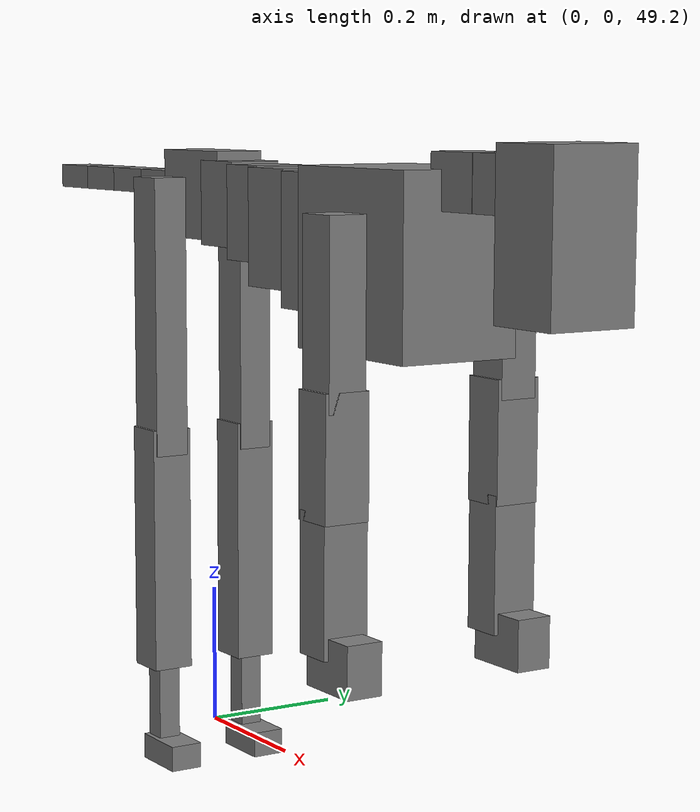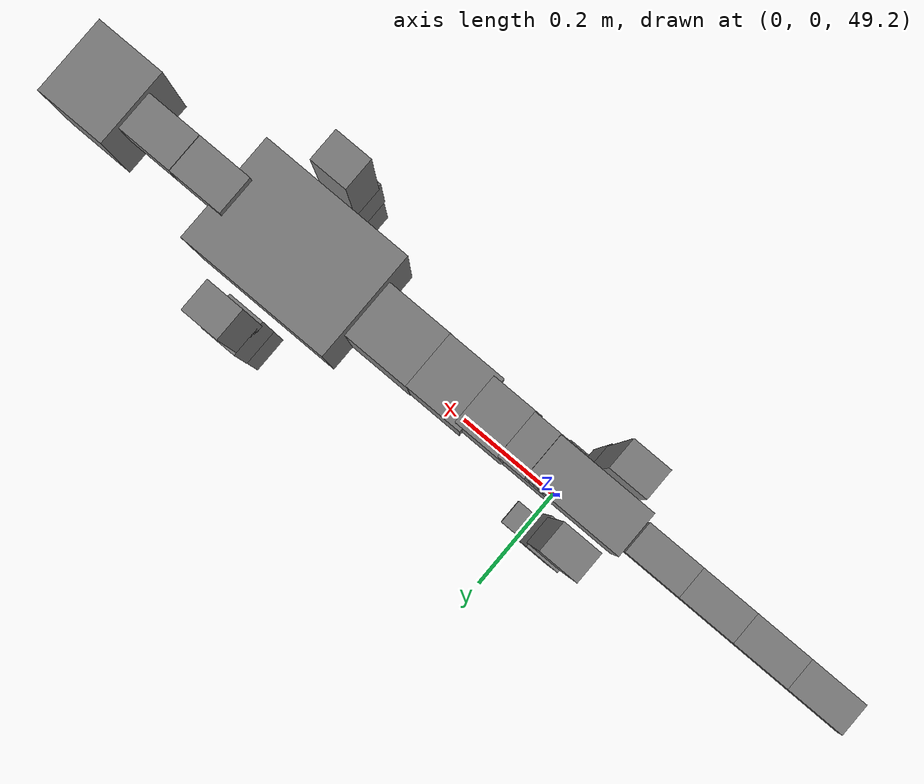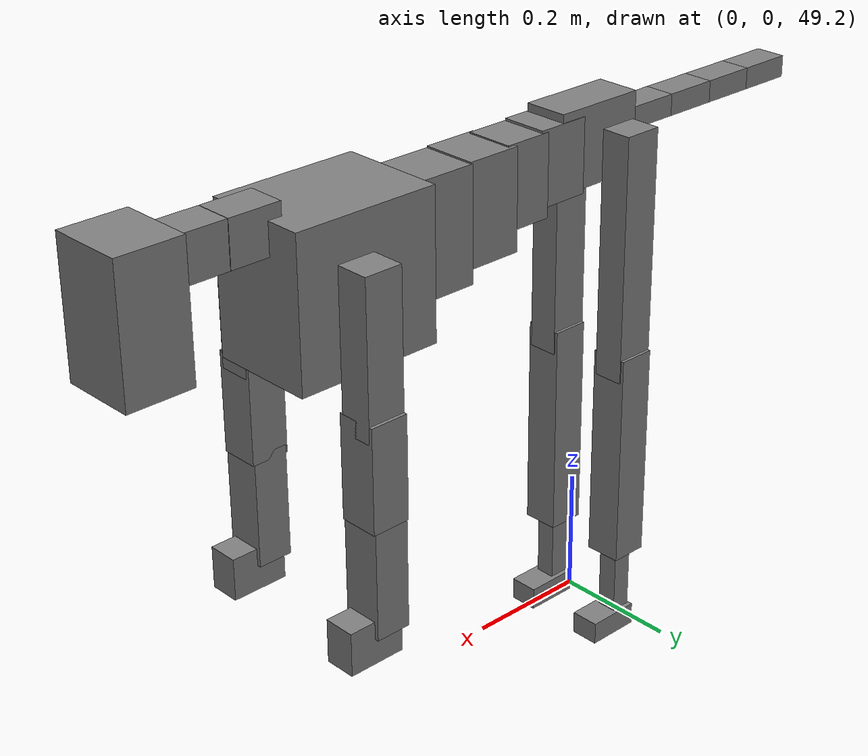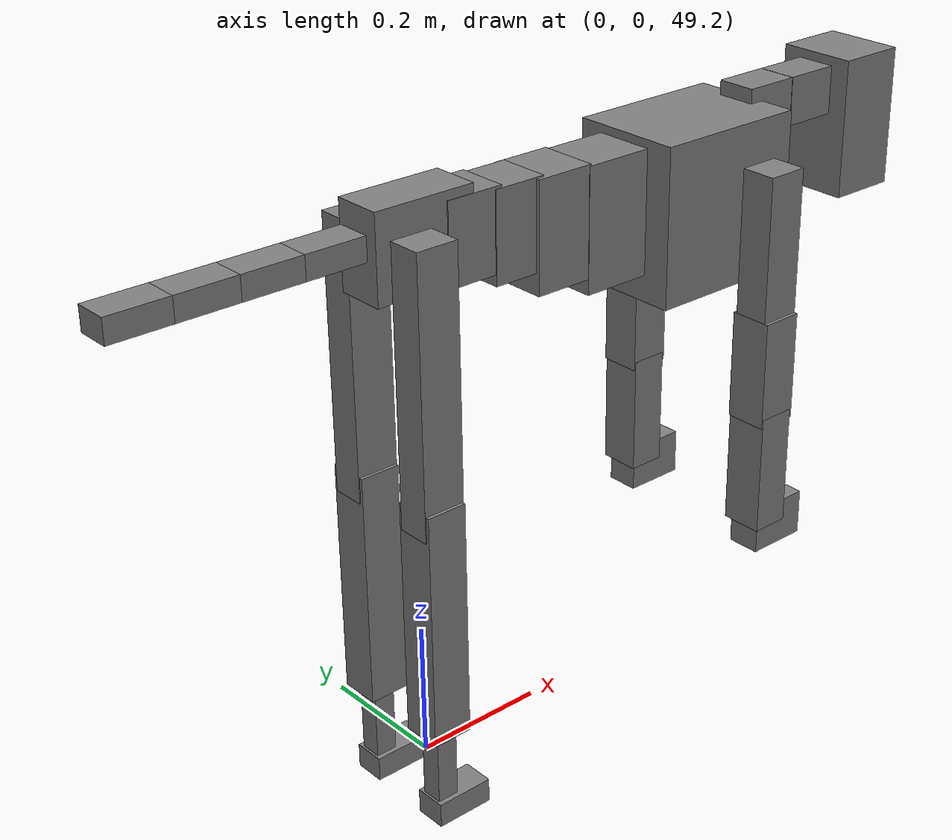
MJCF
<mujoco model="dog">

    <default>
        <joint armature="0.02" stiffness="1" damping="0.2" limited="true"/>
        <geom condim="3" friction="1 0.05 0.05" margin="0.01"/>
        <motor ctrllimited="true" ctrlrange="-1.0 1.0" forcelimited="true" gear="50"/>
    </default>

    <compiler inertiafromgeom="true" angle="radian"/>

    <option timestep="0.016" iterations="50" tolerance="1e-10" solver="Newton" jacobian="dense" cone="pyramidal"/>

    <size nconmax="20000" njmax="60000" nstack="5000000"/>
    <visual>
        <map force="0.1" zfar="30"/>
        <rgba haze="0.15 0.25 0.35 1"/>
        <quality shadowsize="2048"/>
        <global offwidth="800" offheight="800"/>
    </visual>

    <asset>
        <texture type="skybox" builtin="gradient" rgb1="0.3 0.5 0.7" rgb2="0 0 0" width="512" height="512"/>
        <texture name="texplane" type="2d" builtin="checker" rgb1=".2 .3 .4" rgb2=".1 0.15 0.2" width="512" height="512"
                 mark="cross" markrgb=".8 .8 .8"/>
        <texture name="texgeom" type="cube" builtin="flat" mark="cross" width="127" height="1278" rgb1="0.8 0.6 0.4"
                 rgb2="0.8 0.6 0.4" markrgb="1 1 1" random="0.01"/>

        <material name="matplane" reflectance="0.3" texture="texplane" texrepeat="1 1" texuniform="true"/>
        <material name="matgeom" texture="texgeom" texuniform="true" rgba="0.8 0.6 .4 1"/>
    </asset>

    <worldbody>
        <geom name="floor" pos="0 0 0" size="0 0 .25" type="plane" material="matplane" condim="3"/>

        <light directional="false" diffuse=".2 .2 .2" specular="0 0 0" pos="0 0 5" dir="0 0 -1" castshadow="false"/>
        <light mode="targetbodycom" target="torso" directional="false" diffuse=".8 .8 .8" specular="0.3 0.3 0.3"
               pos="0 0 4.0" dir="0 0 -1"/>

        <body name="root" pos="0 0 50">
            <freejoint name="root_1"/>
            <geom type="box" pos="0 0 -0.02" size="0.0774  0.0358  0.063" density="2030"/>

            <body name="spine1" pos="0.054 0 0">
                <joint name="spine1_y" axis="0 1 0" range="0 0.7" limited="true"/>
                <geom type="box" pos="0.02375 0 -0.03" size="0.04375  0.0375  0.05985" density="2030"/>

                <body name="spine2" pos="0.0612 0 0">
                    <joint name="spine2_y" axis="0 1 0" range="-0.15 0.15" limited="true"/>
                    <geom type="box" pos="0.03555  0  -0.04" size="0.04055  0.039  0.06615" density="2030"/>

                    <body name="spine3" pos="0.0730 0 0">
                        <joint name="spine3_y" axis="0 1 0" range="-0.15 0.15" limited="true"/>
                        <geom type="box" pos="0.03555  0  -0.057" size="0.04555  0.0445  0.081" density="2030"/>

                        <body name="spine4" pos="0.0780 0 0">
                            <joint name="spine4_y" axis="0 1 0" range="-0.15 0.15" limited="true"/>
                            <geom type="box" pos="0.05265  0  -0.07" size="0.05265  0.045  0.09135" density="2030"/>

                            <body name="torso" pos="0.1082 0 0">
                                <joint name="torso_y" axis="0 1 0" range="-0.15 0.15" limited="true"/>
                                <geom type="box" pos="0.11925  0  -0.085" size="0.11925  0.085  0.11745"
                                      density="2030"/>

                                <body name="neck1" pos="0.2160  0   0.0180">
                                    <joint name="neck1_y" axis="0 1 0" range="-1.2  -1" limited="true"/>
                                    <geom type="box" pos="0.0423  0  0" size="0.0423  0.03  0.036" density="2325"/>

                                    <body name="neck2" pos="0.0853  0  0">
                                        <joint name="neck2_y" axis="0 1 0" range="0.1  0" limited="true"/>
                                        <geom type="box" pos="0.0423  0  0" size="0.0423  0.03  0.036" density="2325"/>

                                        <body name="head" pos="0.0853  0  0">
                                            <joint name="head_y" axis="0 1 0" range="-0.3  -0.2" limited="true"/>
                                            <geom type="box" pos="0.0531  0  -0.055" size="0.0531  0.06  0.1044"
                                                  density="4030"/>

                                        </body>
                                    </body>
                                </body>

                                <body name="front_shoulder" pos="0.156  0   -0.0480">
                                    <joint name="front_shoulder_y" axis="0 1 0" range="-1 1.5" limited="true"/>
                                    <geom type="box" pos="0 0.13 -0.0942" size="0.0310  0.0265  0.1209" density="1158"/>
                                    <geom type="box" pos="0 -0.13 -0.0942" size="0.0310  0.0265  0.1209"
                                          density="1158"/>

                                    <body name="front_elbow" pos="0  0  -0.1885">
                                        <joint name="front_elbow_y" axis="0 1 0" range="-2 0" limited="true"/>
                                        <geom type="box" pos="0 0.13 -0.0816" size="0.0310  0.0317  0.0816"
                                              density="1081"/>
                                        <geom type="box" pos="0 -0.13 -0.0816" size="0.0310  0.0317  0.0816"
                                              density="1081"/>

                                        <body name="front_wrist" pos="0  0  -0.1632">
                                            <joint name="front_wrist_y" axis="0 1 0" range="-0.2 0" limited="true"/>
                                            <geom type="box" pos="0 0.13 -0.0785" size="0.0285  0.0317  0.0916"
                                                  density="1664"/>
                                            <geom type="box" pos="0 -0.13 -0.0785" size="0.0285  0.0317  0.0916"
                                                  density="1664"/>

                                            <body name="front_finger_end" pos="0  0  -0.1570">
                                                <joint name="front_finger_y" axis="0 1 0" range="-0.4 1"
                                                       limited="true"/>
                                                <geom type="box" pos="0.0253  0.13  -0.0195"
                                                      size="0.0464  0.0253  0.0345" density="1515"/>
                                                <geom type="box" pos="0.0253  -0.13  -0.0195"
                                                      size="0.0464  0.0253  0.0345" density="1515"/>

                                            </body>

                                        </body>
                                    </body>
                                </body>

                            </body>
                        </body>
                    </body>
                </body>
            </body>

            <body name="back_hip" pos="-0.03 0 -0.018">
                <joint name="back_hip_y" axis="0 1 0" range="-1.5 0.3" limited="true"/>
                <geom type="box" pos="0 0.07 -0.1778" size="0.0318  0.0250  0.2006" density="1154"/>
                <geom type="box" pos="0 -0.07 -0.1778" size="0.0318  0.0250  0.2006" density="1154"/>

                <body name="back_knee" pos="0  0  -0.3557">
                    <joint name="back_knee_y" axis="0 1 0" range="0 2.8" limited="true"/>
                    <geom type="box" pos="0 0.07 -0.1625" size="0.0303  0.0298  0.1781" density="1227"/>
                    <geom type="box" pos="0 -0.07 -0.1625" size="0.0303  0.0298  0.1781" density="1227"/>

                    <body name="back_ankle" pos="0  0  -0.3250">
                        <joint name="back_ankle_y" axis="0 1 0" range="-2.2 0" limited="true"/>
                        <geom type="box" pos="0 0.07 -0.0690" size="0.0163  0.0163  0.0802" density="1284"/>
                        <geom type="box" pos="0 -0.07 -0.0690" size="0.0163  0.0163  0.0802" density="1284"/>

                        <body name="back_toe_end" pos="0  0  -0.1380">
                            <joint name="back_toe_y" axis="0 1 0" range="-0.4 1" limited="true"/>
                            <geom type="box" pos="0.0238  0.07  -0.0034" size="0.0436  0.0238  0.0184" density="1515"/>
                            <geom type="box" pos="0.0238  -0.07  -0.0034" size="0.0436  0.0238  0.0184" density="1515"/>

                        </body>
                    </body>
                </body>
            </body>

            <body name="tail1" pos="-0.074 0 -0.006">
                <joint name="tail1_y" axis="0 1 0" range="-0.2 0.2" limited="true"/>
                <geom type="box" pos="-0.0536  0  0" size="0.045  0.025  0.0175" density="1587"/>

                <body name="tail2" pos="-0.09 0 0">
                    <joint name="tail2_y" axis="0 1 0" range="-0.2 0.2" limited="true"/>
                    <geom type="box" pos="-0.0536  0  0" size="0.045  0.025  0.0175" density="1587"/>

                    <body name="tail3" pos="-0.09 0 0">
                        <joint name="tail3_y" axis="0 1 0" range="-0.2 0.2" limited="true"/>
                        <geom type="box" pos="-0.0536  0  0" size="0.045  0.025  0.0175" density="1587"/>

                        <body name="tail4" pos="-0.09 0 0">
                            <joint name="tail4_y" axis="0 1 0" range="-0.2 0.2" limited="true"/>
                            <geom type="box" pos="-0.0536  0  0" size="0.045  0.025  0.0175" density="1587"/>

                        </body>
                    </body>
                </body>
            </body>
        </body>
    </worldbody>

    <actuator>
        <motor joint="spine1_y" forcerange="-150 150     "/>
        <motor joint="spine2_y" forcerange="-150 150     "/>
        <motor joint="spine3_y" forcerange="-150 150     "/>
        <motor joint="spine4_y" forcerange="-150 150     "/>
        <motor joint="torso_y" forcerange="-150 150     "/>
        <motor joint="neck1_y" forcerange="-100 100       "/>
        <motor joint="neck2_y" forcerange="-100 100       "/>
        <motor joint="head_y" forcerange="-150 150       "/>
        <motor joint="front_shoulder_y" forcerange="-110.73 165.95"/>
        <motor joint="front_elbow_y" forcerange="-154.93 175.50"/>
        <motor joint="front_wrist_y" forcerange="-122.55 131.00"/>
        <motor joint="front_finger_y" forcerange="-61.80 33.22"/>
        <motor joint="back_hip_y" forcerange="-202.10 330.65"/>
        <motor joint="back_knee_y" forcerange="-237.02 397.13"/>
        <motor joint="back_angle_y" forcerange="-53.94 107.40"/>
        <motor joint="back_toe_y" forcerange="-89.96 20.11"/>
        <motor joint="tail1_y" forcerange="-50 50     "/>
        <motor joint="tail2_y" forcerange="-50 50     "/>
        <motor joint="tail3_y" forcerange="-50 50     "/>
        <motor joint="tail4_y" forcerange="-50 50     "/>
    </actuator>
</mujoco>
